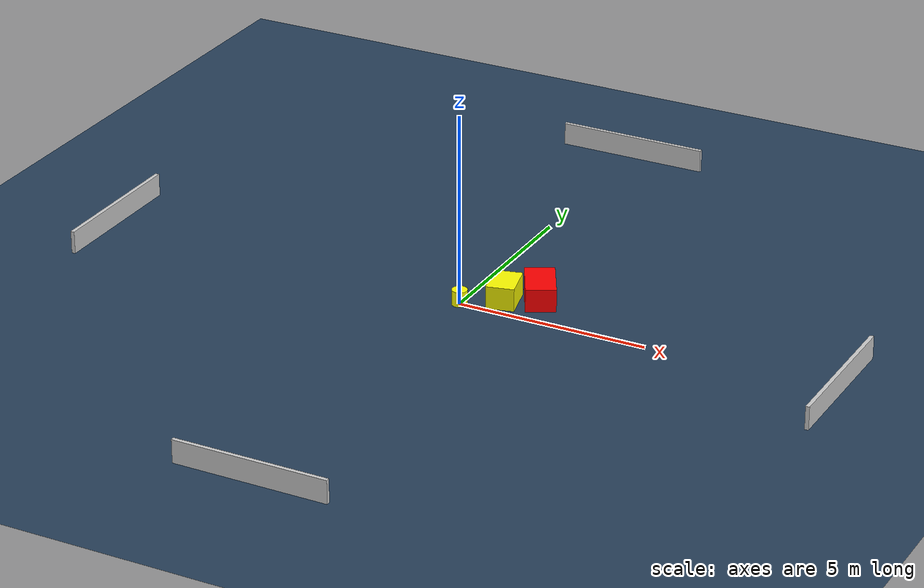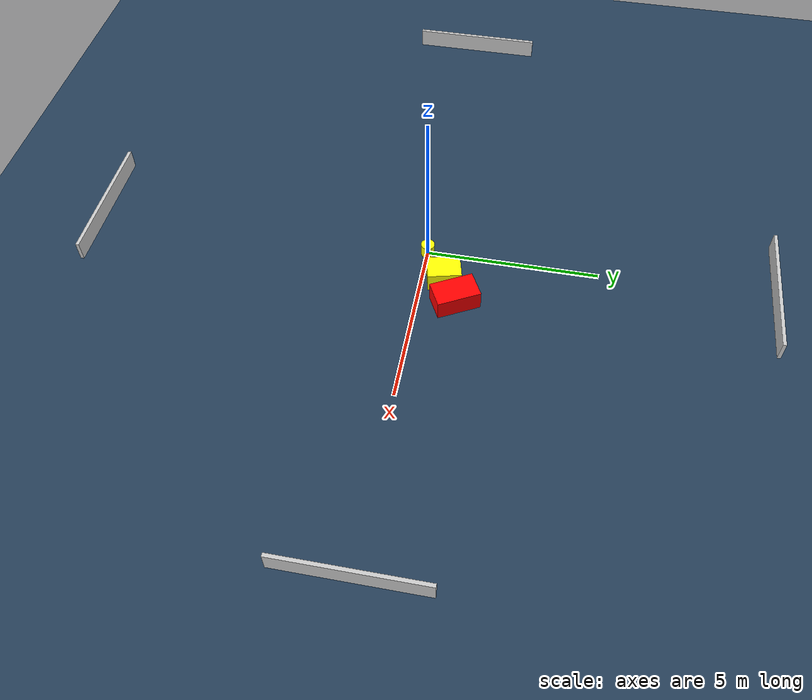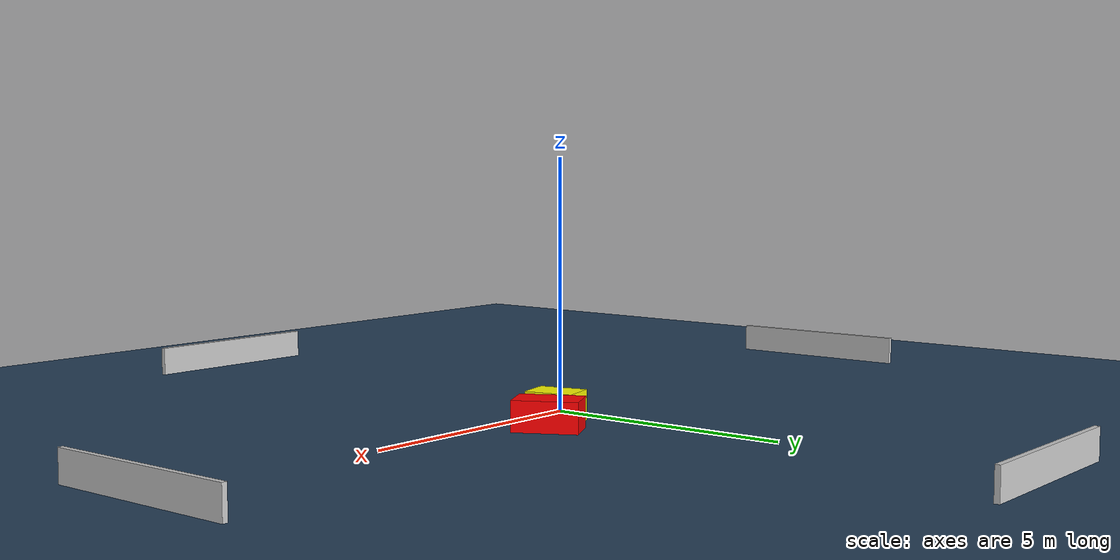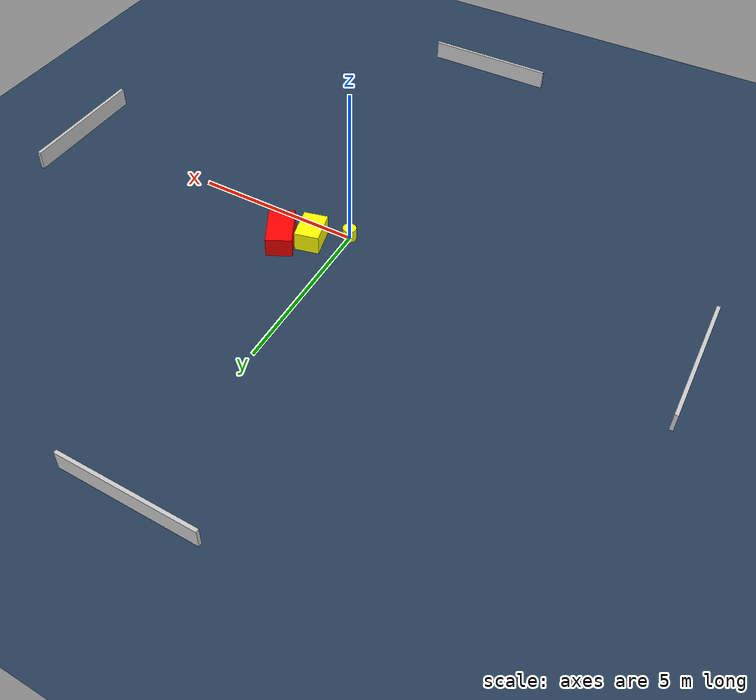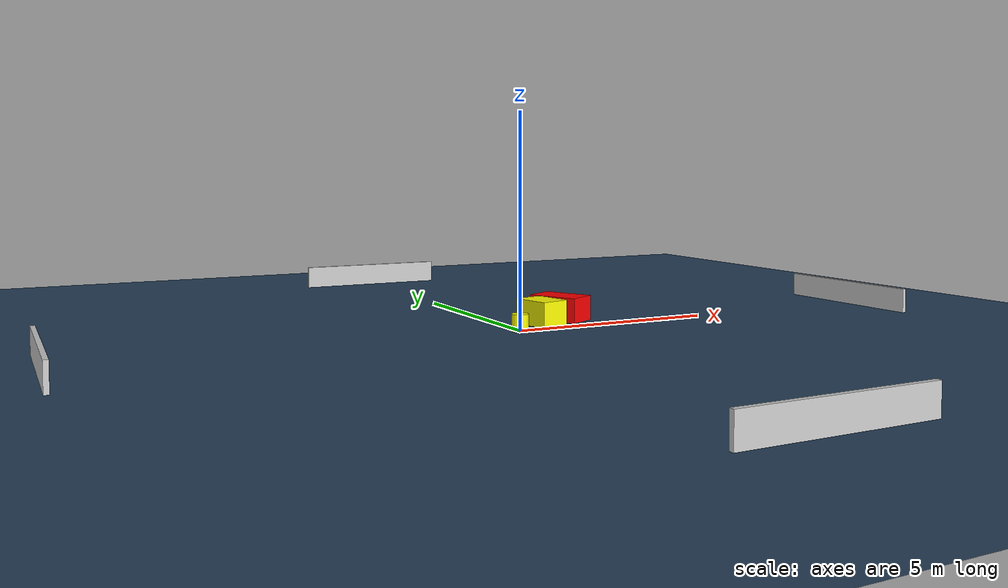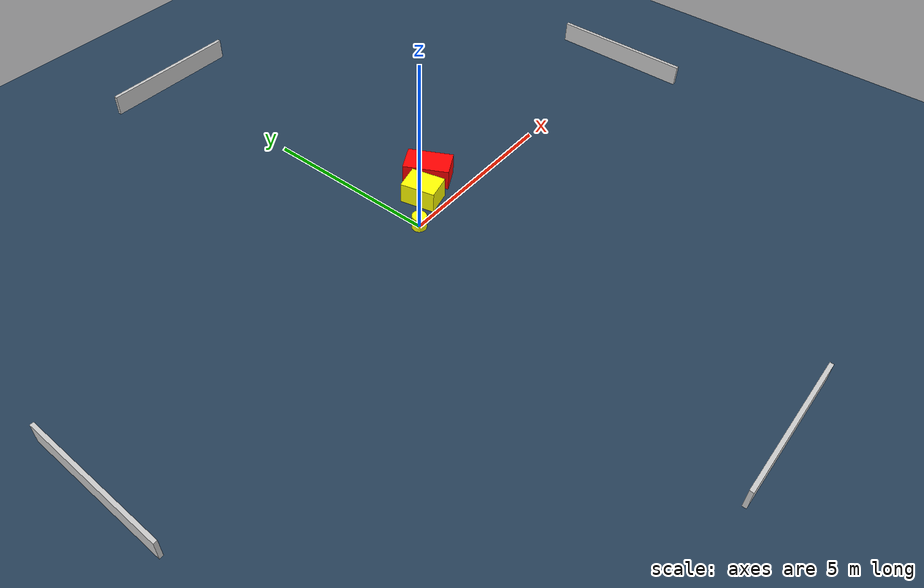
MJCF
<?xml version="1.0" ?>
<mujoco model="generated_environment">
  <option timestep="0.01" integrator="RK4" cone="elliptic"/>
  <default>
    <geom density="1"/>
  </default>
  <asset>
    <texture builtin="gradient" height="3072" name="skybox" rgb1="0.3 0.5 0.7" rgb2="0 0 0" type="skybox" width="512"/>
    <texture builtin="checker" height="300" name="groundplane" rgb1="0.2 0.3 0.4" rgb2="0.1 0.2 0.3" type="2d" width="300"/>
    <material name="groundplane" reflectance="0.2" texrepeat="5 5" texture="groundplane"/>
  </asset>
  <worldbody>
    <light dir="0 0 -1" directional="true" pos="0 0 1.5"/>
    <geom condim="3" friction="0.5 0.005 0.001" material="groundplane" name="floor" pos="0 0 0" size="0 0 0.05" type="plane"/>
    <body name="walls">
      <geom name="wall_1" condim="4" pos="-10.0 0.0 0.3" rgba="0.800000011920929 0.800000011920929 0.800000011920929 1.0" size="0.05 2.0 0.3" type="box"/>
      <geom name="wall_2" condim="4" pos="10.0 0.0 0.3" rgba="0.800000011920929 0.800000011920929 0.800000011920929 1.0" size="0.05 2.0 0.3" type="box"/>
      <geom name="wall_3" condim="4" pos="0.0 -10.0 0.3" rgba="0.800000011920929 0.800000011920929 0.800000011920929 1.0" size="2.0 0.05 0.3" type="box"/>
      <geom name="wall_4" condim="4" pos="0.0 10.0 0.3" rgba="0.800000011920929 0.800000011920929 0.800000011920929 1.0" size="2.0 0.05 0.3" type="box"/>
    </body>
    <body name="robot">
      <joint name="joint_x" type="slide" pos="0 0 0" axis="1 0 0"/>
      <joint name="joint_y" type="slide" pos="0 0 0" axis="0 1 0"/>
      <geom name="robot" type="cylinder" pos="0.0 0.0 0.2" size="0.2 0.2 0.0" mass="5.0" friction="1.0 0.005 0.0001" condim="4" rgba="1.0 1.0 0.0 1.0"/>
    </body>
    <body name="obstacle_1_movable">
      <geom name="obstacle_1_movable" condim="4" pos="0.9068268404967353 0.6272309962925782 0.3" euler="0 0 283.7326803801737" friction="0.0 0.005 0.001" rgba="1.0 1.0 0.0 1.0" size="0.48358246284728185 0.3602851559396917 0.3" type="box" mass="0.1"/>
      <joint type="free"/>
    </body>
    <body name="obstacle_2_static">
      <geom name="obstacle_2_static" condim="4" pos="1.669956739487286 1.0750694551641014 0.3" euler="0 0 27.991548349659162" friction="0.0 0.005 0.001" rgba="1.0 0.0 0.0 1.0" size="0.38309371251896673 0.6348264722289534 0.3" type="box"/>
    </body>
  </worldbody>
  <actuator>
    <motor name="actuator_x" joint="joint_x" gear="1" ctrlrange="-1 1"/>
    <motor name="actuator_y" joint="joint_y" gear="1" ctrlrange="-1 1"/>
  </actuator>
</mujoco>
